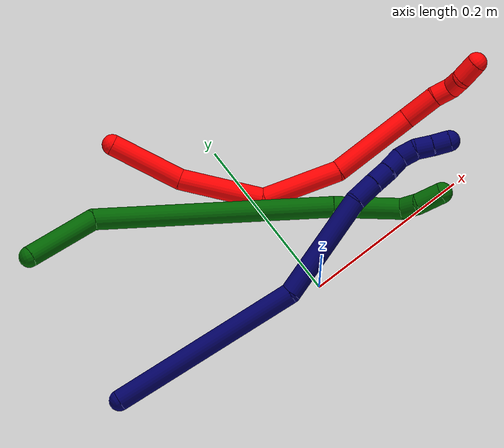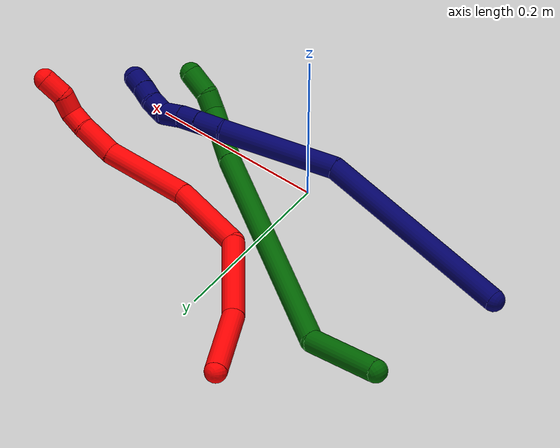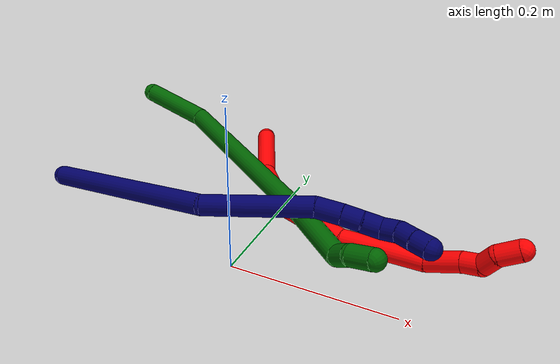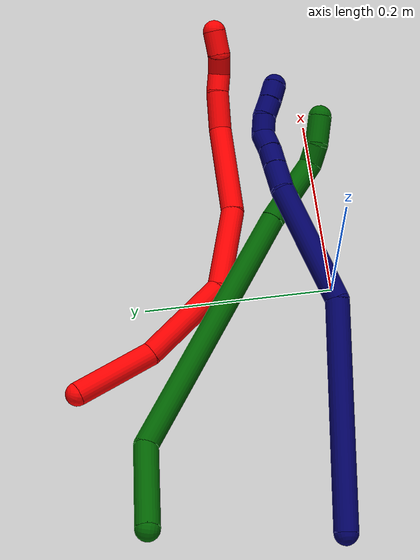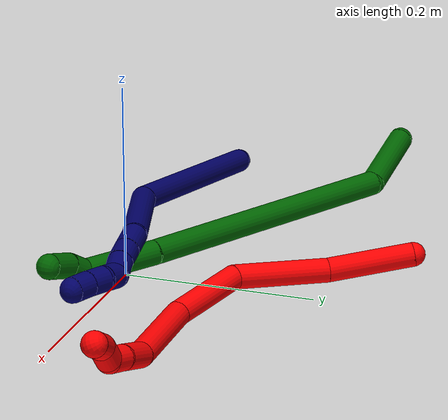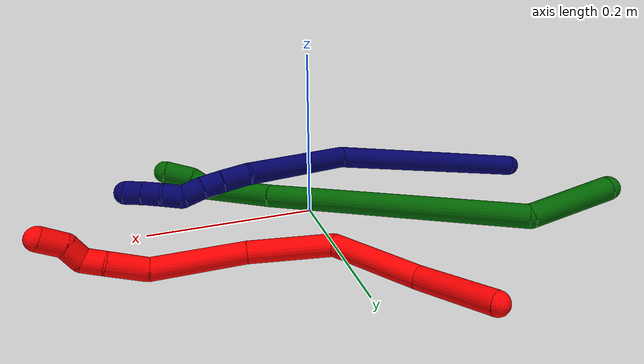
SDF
<sdf version="1.7">
 <world name="default">
  <model name="2">
   <static>0</static>
   <link name="2">
    <collision name="collision-cylinder-e_1_1_4">
     <pose>0.024966 -0.002267 0.036777 0.06156 0.595513 0.018897</pose>
     <geometry><cylinder><radius>0.0125</radius><length>0.089017</length></cylinder></geometry>
     <surface>
      <friction><ode><mu>1.16</mu><mu2>1.16</mu2><slip1>0</slip1><slip2>0</slip2></ode></friction>
      <contact><ode><kp>1e+06</kp><kd>1</kd><max_vel>0</max_vel><min_depth>0.001</min_depth></ode></contact>
     </surface>
    </collision>
    <visual name="visual-cylinder-e_1_1_4">
     <pose>0.024966 -0.002267 0.036777 0.06156 0.595513 0.018897</pose>
     <geometry><cylinder><radius>0.0125</radius><length>0.089017</length></cylinder></geometry>
     <material><ambient>1 0 0 1</ambient></material>
    </visual>
    <collision name="collision-cylinder-e_2_4_5">
     <pose>0.08892 -0.007148 0.105254 0.082288 0.886461 0.039082</pose>
     <geometry><cylinder><radius>0.0125</radius><length>0.100633</length></cylinder></geometry>
     <surface>
      <friction><ode><mu>1.16</mu><mu2>1.16</mu2><slip1>0</slip1><slip2>0</slip2></ode></friction>
      <contact><ode><kp>1e+06</kp><kd>1</kd><max_vel>0</max_vel><min_depth>0.001</min_depth></ode></contact>
     </surface>
    </collision>
    <visual name="visual-cylinder-e_2_4_5">
     <pose>0.08892 -0.007148 0.105254 0.082288 0.886461 0.039082</pose>
     <geometry><cylinder><radius>0.0125</radius><length>0.100633</length></cylinder></geometry>
     <material><ambient>1 0 0 1</ambient></material>
    </visual>
    <collision name="collision-cylinder-e_3_5_6">
     <pose>0.166221 -0.034904 0.148028 1.15593 0.948741 0.646361</pose>
     <geometry><cylinder><radius>0.0125</radius><length>0.09429</length></cylinder></geometry>
     <surface>
      <friction><ode><mu>1.16</mu><mu2>1.16</mu2><slip1>0</slip1><slip2>0</slip2></ode></friction>
      <contact><ode><kp>1e+06</kp><kd>1</kd><max_vel>0</max_vel><min_depth>0.001</min_depth></ode></contact>
     </surface>
    </collision>
    <visual name="visual-cylinder-e_3_5_6">
     <pose>0.166221 -0.034904 0.148028 1.15593 0.948741 0.646361</pose>
     <geometry><cylinder><radius>0.0125</radius><length>0.09429</length></cylinder></geometry>
     <material><ambient>1 0 0 1</ambient></material>
    </visual>
    <collision name="collision-cylinder-e_4_6_7">
     <pose>0.244796 -0.09122 0.156546 1.65256 0.910291 0.976531</pose>
     <geometry><cylinder><radius>0.0125</radius><length>0.101968</length></cylinder></geometry>
     <surface>
      <friction><ode><mu>1.16</mu><mu2>1.16</mu2><slip1>0</slip1><slip2>0</slip2></ode></friction>
      <contact><ode><kp>1e+06</kp><kd>1</kd><max_vel>0</max_vel><min_depth>0.001</min_depth></ode></contact>
     </surface>
    </collision>
    <visual name="visual-cylinder-e_4_6_7">
     <pose>0.244796 -0.09122 0.156546 1.65256 0.910291 0.976531</pose>
     <geometry><cylinder><radius>0.0125</radius><length>0.101968</length></cylinder></geometry>
     <material><ambient>1 0 0 1</ambient></material>
    </visual>
    <collision name="collision-cylinder-e_5_7_8">
     <pose>0.30509 -0.129351 0.150523 2.03339 1.20068 1.67179</pose>
     <geometry><cylinder><radius>0.0125</radius><length>0.042974</length></cylinder></geometry>
     <surface>
      <friction><ode><mu>1.16</mu><mu2>1.16</mu2><slip1>0</slip1><slip2>0</slip2></ode></friction>
      <contact><ode><kp>1e+06</kp><kd>1</kd><max_vel>0</max_vel><min_depth>0.001</min_depth></ode></contact>
     </surface>
    </collision>
    <visual name="visual-cylinder-e_5_7_8">
     <pose>0.30509 -0.129351 0.150523 2.03339 1.20068 1.67179</pose>
     <geometry><cylinder><radius>0.0125</radius><length>0.042974</length></cylinder></geometry>
     <material><ambient>1 0 0 1</ambient></material>
    </visual>
    <collision name="collision-cylinder-e_6_8_9">
     <pose>0.335586 -0.13997 0.147224 1.52445 1.23375 1.19034</pose>
     <geometry><cylinder><radius>0.0125</radius><length>0.022177</length></cylinder></geometry>
     <surface>
      <friction><ode><mu>1.16</mu><mu2>1.16</mu2><slip1>0</slip1><slip2>0</slip2></ode></friction>
      <contact><ode><kp>1e+06</kp><kd>1</kd><max_vel>0</max_vel><min_depth>0.001</min_depth></ode></contact>
     </surface>
    </collision>
    <visual name="visual-cylinder-e_6_8_9">
     <pose>0.335586 -0.13997 0.147224 1.52445 1.23375 1.19034</pose>
     <geometry><cylinder><radius>0.0125</radius><length>0.022177</length></cylinder></geometry>
     <material><ambient>1 0 0 1</ambient></material>
    </visual>
    <collision name="collision-cylinder-e_7_9_10">
     <pose>0.356079 -0.140766 0.14338 -2.52141 1.1137 -2.19094</pose>
     <geometry><cylinder><radius>0.0125</radius><length>0.022351</length></cylinder></geometry>
     <surface>
      <friction><ode><mu>1.16</mu><mu2>1.16</mu2><slip1>0</slip1><slip2>0</slip2></ode></friction>
      <contact><ode><kp>1e+06</kp><kd>1</kd><max_vel>0</max_vel><min_depth>0.001</min_depth></ode></contact>
     </surface>
    </collision>
    <visual name="visual-cylinder-e_7_9_10">
     <pose>0.356079 -0.140766 0.14338 -2.52141 1.1137 -2.19094</pose>
     <geometry><cylinder><radius>0.0125</radius><length>0.022351</length></cylinder></geometry>
     <material><ambient>1 0 0 1</ambient></material>
    </visual>
    <collision name="collision-cylinder-e_8_10_2">
     <pose>0.378188 -0.140845 0.134662 2.58224 1.14006 2.29913</pose>
     <geometry><cylinder><radius>0.0125</radius><length>0.02659</length></cylinder></geometry>
     <surface>
      <friction><ode><mu>1.16</mu><mu2>1.16</mu2><slip1>0</slip1><slip2>0</slip2></ode></friction>
      <contact><ode><kp>1e+06</kp><kd>1</kd><max_vel>0</max_vel><min_depth>0.001</min_depth></ode></contact>
     </surface>
    </collision>
    <visual name="visual-cylinder-e_8_10_2">
     <pose>0.378188 -0.140845 0.134662 2.58224 1.14006 2.29913</pose>
     <geometry><cylinder><radius>0.0125</radius><length>0.02659</length></cylinder></geometry>
     <material><ambient>1 0 0 1</ambient></material>
    </visual>
    <collision name="collision-sphere-2">
     <pose>0.390268 -0.143791 0.129957 0 -0 0</pose>
     <geometry><sphere><radius>0.0125</radius></sphere></geometry>
     <surface>
      <friction><ode><mu>1.16</mu><mu2>1.16</mu2><slip1>0</slip1><slip2>0</slip2></ode></friction>
      <contact><ode><kp>1e+06</kp><kd>1</kd><max_vel>0</max_vel><min_depth>0.001</min_depth></ode></contact>
     </surface>
    </collision>
    <visual name="visual-sphere-2">
     <pose>0.390268 -0.143791 0.129957 0 -0 0</pose>
     <geometry><sphere><radius>0.0125</radius></sphere></geometry>
     <material><ambient>1 0 0 1</ambient></material>
    </visual>
    <collision name="collision-sphere-10">
     <pose>0.366107 -0.1379 0.139367 0 -0 0</pose>
     <geometry><sphere><radius>0.0125</radius></sphere></geometry>
     <surface>
      <friction><ode><mu>1.16</mu><mu2>1.16</mu2><slip1>0</slip1><slip2>0</slip2></ode></friction>
      <contact><ode><kp>1e+06</kp><kd>1</kd><max_vel>0</max_vel><min_depth>0.001</min_depth></ode></contact>
     </surface>
    </collision>
    <visual name="visual-sphere-10">
     <pose>0.366107 -0.1379 0.139367 0 -0 0</pose>
     <geometry><sphere><radius>0.0125</radius></sphere></geometry>
     <material><ambient>1 0 0 1</ambient></material>
    </visual>
    <collision name="collision-sphere-9">
     <pose>0.346051 -0.143633 0.147394 0 -0 0</pose>
     <geometry><sphere><radius>0.0125</radius></sphere></geometry>
     <surface>
      <friction><ode><mu>1.16</mu><mu2>1.16</mu2><slip1>0</slip1><slip2>0</slip2></ode></friction>
      <contact><ode><kp>1e+06</kp><kd>1</kd><max_vel>0</max_vel><min_depth>0.001</min_depth></ode></contact>
     </surface>
    </collision>
    <visual name="visual-sphere-9">
     <pose>0.346051 -0.143633 0.147394 0 -0 0</pose>
     <geometry><sphere><radius>0.0125</radius></sphere></geometry>
     <material><ambient>1 0 0 1</ambient></material>
    </visual>
    <collision name="collision-sphere-4">
     <pose>0.049932 -0.004534 0.073554 0 -0 0</pose>
     <geometry><sphere><radius>0.0125</radius></sphere></geometry>
     <surface>
      <friction><ode><mu>1.16</mu><mu2>1.16</mu2><slip1>0</slip1><slip2>0</slip2></ode></friction>
      <contact><ode><kp>1e+06</kp><kd>1</kd><max_vel>0</max_vel><min_depth>0.001</min_depth></ode></contact>
     </surface>
    </collision>
    <visual name="visual-sphere-4">
     <pose>0.049932 -0.004534 0.073554 0 -0 0</pose>
     <geometry><sphere><radius>0.0125</radius></sphere></geometry>
     <material><ambient>1 0 0 1</ambient></material>
    </visual>
    <collision name="collision-sphere-1">
     <geometry><sphere><radius>0.0125</radius></sphere></geometry>
     <surface>
      <friction><ode><mu>1.16</mu><mu2>1.16</mu2><slip1>0</slip1><slip2>0</slip2></ode></friction>
      <contact><ode><kp>1e+06</kp><kd>1</kd><max_vel>0</max_vel><min_depth>0.001</min_depth></ode></contact>
     </surface>
    </collision>
    <visual name="visual-sphere-1">
     <geometry><sphere><radius>0.0125</radius></sphere></geometry>
     <material><ambient>1 0 0 1</ambient></material>
    </visual>
    <collision name="collision-sphere-8">
     <pose>0.325121 -0.136306 0.147054 0 -0 0</pose>
     <geometry><sphere><radius>0.0125</radius></sphere></geometry>
     <surface>
      <friction><ode><mu>1.16</mu><mu2>1.16</mu2><slip1>0</slip1><slip2>0</slip2></ode></friction>
      <contact><ode><kp>1e+06</kp><kd>1</kd><max_vel>0</max_vel><min_depth>0.001</min_depth></ode></contact>
     </surface>
    </collision>
    <visual name="visual-sphere-8">
     <pose>0.325121 -0.136306 0.147054 0 -0 0</pose>
     <geometry><sphere><radius>0.0125</radius></sphere></geometry>
     <material><ambient>1 0 0 1</ambient></material>
    </visual>
    <collision name="collision-sphere-5">
     <pose>0.127907 -0.009763 0.136955 0 -0 0</pose>
     <geometry><sphere><radius>0.0125</radius></sphere></geometry>
     <surface>
      <friction><ode><mu>1.16</mu><mu2>1.16</mu2><slip1>0</slip1><slip2>0</slip2></ode></friction>
      <contact><ode><kp>1e+06</kp><kd>1</kd><max_vel>0</max_vel><min_depth>0.001</min_depth></ode></contact>
     </surface>
    </collision>
    <visual name="visual-sphere-5">
     <pose>0.127907 -0.009763 0.136955 0 -0 0</pose>
     <geometry><sphere><radius>0.0125</radius></sphere></geometry>
     <material><ambient>1 0 0 1</ambient></material>
    </visual>
    <collision name="collision-sphere-6">
     <pose>0.204535 -0.060045 0.159101 0 -0 0</pose>
     <geometry><sphere><radius>0.0125</radius></sphere></geometry>
     <surface>
      <friction><ode><mu>1.16</mu><mu2>1.16</mu2><slip1>0</slip1><slip2>0</slip2></ode></friction>
      <contact><ode><kp>1e+06</kp><kd>1</kd><max_vel>0</max_vel><min_depth>0.001</min_depth></ode></contact>
     </surface>
    </collision>
    <visual name="visual-sphere-6">
     <pose>0.204535 -0.060045 0.159101 0 -0 0</pose>
     <geometry><sphere><radius>0.0125</radius></sphere></geometry>
     <material><ambient>1 0 0 1</ambient></material>
    </visual>
    <collision name="collision-sphere-7">
     <pose>0.285058 -0.122396 0.153992 0 -0 0</pose>
     <geometry><sphere><radius>0.0125</radius></sphere></geometry>
     <surface>
      <friction><ode><mu>1.16</mu><mu2>1.16</mu2><slip1>0</slip1><slip2>0</slip2></ode></friction>
      <contact><ode><kp>1e+06</kp><kd>1</kd><max_vel>0</max_vel><min_depth>0.001</min_depth></ode></contact>
     </surface>
    </collision>
    <visual name="visual-sphere-7">
     <pose>0.285058 -0.122396 0.153992 0 -0 0</pose>
     <geometry><sphere><radius>0.0125</radius></sphere></geometry>
     <material><ambient>1 0 0 1</ambient></material>
    </visual>
    <inertial>
     <pose>0.180746 -0.058136 0.12061 0 -0 0</pose>
     <mass>0.5</mass>
     <inertia>
      <ixx>0.000282</ixx>
      <ixy>0</ixy>
      <ixz>0</ixz>
      <iyy>0.000345</iyy>
      <iyz>0</iyz>
      <izz>-0.000133</izz>
     </inertia>
    </inertial>
   </link>
   <pose>-0.090837 0.277826 0.024093 2.16811 -0.5464 -0.389938</pose>
  </model>
  <model name="6">
   <static>0</static>
   <link name="6">
    <collision name="collision-cylinder-e_1_1_4">
     <pose>0.03996 -0.017454 0.008673 1.10962 1.117 0.738939</pose>
     <geometry><cylinder><radius>0.0125</radius><length>0.088919</length></cylinder></geometry>
     <surface>
      <friction><ode><mu>1.16</mu><mu2>1.16</mu2><slip1>0</slip1><slip2>0</slip2></ode></friction>
      <contact><ode><kp>1e+06</kp><kd>1</kd><max_vel>0</max_vel><min_depth>0.001</min_depth></ode></contact>
     </surface>
    </collision>
    <visual name="visual-cylinder-e_1_1_4">
     <pose>0.03996 -0.017454 0.008673 1.10962 1.117 0.738939</pose>
     <geometry><cylinder><radius>0.0125</radius><length>0.088919</length></cylinder></geometry>
     <material><ambient>0 0.392157 0.003922 1</ambient></material>
    </visual>
    <collision name="collision-cylinder-e_2_4_5">
     <pose>0.188932 -0.109329 -0.027114 2.10932 0.898967 1.40917</pose>
     <geometry><cylinder><radius>0.0125</radius><length>0.278559</length></cylinder></geometry>
     <surface>
      <friction><ode><mu>1.16</mu><mu2>1.16</mu2><slip1>0</slip1><slip2>0</slip2></ode></friction>
      <contact><ode><kp>1e+06</kp><kd>1</kd><max_vel>0</max_vel><min_depth>0.001</min_depth></ode></contact>
     </surface>
    </collision>
    <visual name="visual-cylinder-e_2_4_5">
     <pose>0.188932 -0.109329 -0.027114 2.10932 0.898967 1.40917</pose>
     <geometry><cylinder><radius>0.0125</radius><length>0.278559</length></cylinder></geometry>
     <material><ambient>0 0.392157 0.003922 1</ambient></material>
    </visual>
    <collision name="collision-cylinder-e_3_5_6">
     <pose>0.32824 -0.204091 -0.087269 2.22796 0.867436 1.5114</pose>
     <geometry><cylinder><radius>0.0125</radius><length>0.079448</length></cylinder></geometry>
     <surface>
      <friction><ode><mu>1.16</mu><mu2>1.16</mu2><slip1>0</slip1><slip2>0</slip2></ode></friction>
      <contact><ode><kp>1e+06</kp><kd>1</kd><max_vel>0</max_vel><min_depth>0.001</min_depth></ode></contact>
     </surface>
    </collision>
    <visual name="visual-cylinder-e_3_5_6">
     <pose>0.32824 -0.204091 -0.087269 2.22796 0.867436 1.5114</pose>
     <geometry><cylinder><radius>0.0125</radius><length>0.079448</length></cylinder></geometry>
     <material><ambient>0 0.392157 0.003922 1</ambient></material>
    </visual>
    <collision name="collision-cylinder-e_4_6_7">
     <pose>0.362378 -0.234862 -0.105049 1.76809 0.346581 0.420684</pose>
     <geometry><cylinder><radius>0.0125</radius><length>0.022616</length></cylinder></geometry>
     <surface>
      <friction><ode><mu>1.16</mu><mu2>1.16</mu2><slip1>0</slip1><slip2>0</slip2></ode></friction>
      <contact><ode><kp>1e+06</kp><kd>1</kd><max_vel>0</max_vel><min_depth>0.001</min_depth></ode></contact>
     </surface>
    </collision>
    <visual name="visual-cylinder-e_4_6_7">
     <pose>0.362378 -0.234862 -0.105049 1.76809 0.346581 0.420684</pose>
     <geometry><cylinder><radius>0.0125</radius><length>0.022616</length></cylinder></geometry>
     <material><ambient>0 0.392157 0.003922 1</ambient></material>
    </visual>
    <collision name="collision-cylinder-e_5_7_2">
     <pose>0.375227 -0.25757 -0.10706 1.56478 0.632923 0.629371</pose>
     <geometry><cylinder><radius>0.0125</radius><length>0.030458</length></cylinder></geometry>
     <surface>
      <friction><ode><mu>1.16</mu><mu2>1.16</mu2><slip1>0</slip1><slip2>0</slip2></ode></friction>
      <contact><ode><kp>1e+06</kp><kd>1</kd><max_vel>0</max_vel><min_depth>0.001</min_depth></ode></contact>
     </surface>
    </collision>
    <visual name="visual-cylinder-e_5_7_2">
     <pose>0.375227 -0.25757 -0.10706 1.56478 0.632923 0.629371</pose>
     <geometry><cylinder><radius>0.0125</radius><length>0.030458</length></cylinder></geometry>
     <material><ambient>0 0.392157 0.003922 1</ambient></material>
    </visual>
    <collision name="collision-sphere-2">
     <pose>0.384235 -0.269849 -0.106986 0 -0 0</pose>
     <geometry><sphere><radius>0.0125</radius></sphere></geometry>
     <surface>
      <friction><ode><mu>1.16</mu><mu2>1.16</mu2><slip1>0</slip1><slip2>0</slip2></ode></friction>
      <contact><ode><kp>1e+06</kp><kd>1</kd><max_vel>0</max_vel><min_depth>0.001</min_depth></ode></contact>
     </surface>
    </collision>
    <visual name="visual-sphere-2">
     <pose>0.384235 -0.269849 -0.106986 0 -0 0</pose>
     <geometry><sphere><radius>0.0125</radius></sphere></geometry>
     <material><ambient>0 0.392157 0.003922 1</ambient></material>
    </visual>
    <collision name="collision-sphere-7">
     <pose>0.366219 -0.245291 -0.107134 0 -0 0</pose>
     <geometry><sphere><radius>0.0125</radius></sphere></geometry>
     <surface>
      <friction><ode><mu>1.16</mu><mu2>1.16</mu2><slip1>0</slip1><slip2>0</slip2></ode></friction>
      <contact><ode><kp>1e+06</kp><kd>1</kd><max_vel>0</max_vel><min_depth>0.001</min_depth></ode></contact>
     </surface>
    </collision>
    <visual name="visual-sphere-7">
     <pose>0.366219 -0.245291 -0.107134 0 -0 0</pose>
     <geometry><sphere><radius>0.0125</radius></sphere></geometry>
     <material><ambient>0 0.392157 0.003922 1</ambient></material>
    </visual>
    <collision name="collision-sphere-6">
     <pose>0.358536 -0.224433 -0.102965 0 -0 0</pose>
     <geometry><sphere><radius>0.0125</radius></sphere></geometry>
     <surface>
      <friction><ode><mu>1.16</mu><mu2>1.16</mu2><slip1>0</slip1><slip2>0</slip2></ode></friction>
      <contact><ode><kp>1e+06</kp><kd>1</kd><max_vel>0</max_vel><min_depth>0.001</min_depth></ode></contact>
     </surface>
    </collision>
    <visual name="visual-sphere-6">
     <pose>0.358536 -0.224433 -0.102965 0 -0 0</pose>
     <geometry><sphere><radius>0.0125</radius></sphere></geometry>
     <material><ambient>0 0.392157 0.003922 1</ambient></material>
    </visual>
    <collision name="collision-sphere-5">
     <pose>0.297944 -0.183749 -0.071574 0 -0 0</pose>
     <geometry><sphere><radius>0.0125</radius></sphere></geometry>
     <surface>
      <friction><ode><mu>1.16</mu><mu2>1.16</mu2><slip1>0</slip1><slip2>0</slip2></ode></friction>
      <contact><ode><kp>1e+06</kp><kd>1</kd><max_vel>0</max_vel><min_depth>0.001</min_depth></ode></contact>
     </surface>
    </collision>
    <visual name="visual-sphere-5">
     <pose>0.297944 -0.183749 -0.071574 0 -0 0</pose>
     <geometry><sphere><radius>0.0125</radius></sphere></geometry>
     <material><ambient>0 0.392157 0.003922 1</ambient></material>
    </visual>
    <collision name="collision-sphere-1">
     <geometry><sphere><radius>0.0125</radius></sphere></geometry>
     <surface>
      <friction><ode><mu>1.16</mu><mu2>1.16</mu2><slip1>0</slip1><slip2>0</slip2></ode></friction>
      <contact><ode><kp>1e+06</kp><kd>1</kd><max_vel>0</max_vel><min_depth>0.001</min_depth></ode></contact>
     </surface>
    </collision>
    <visual name="visual-sphere-1">
     <geometry><sphere><radius>0.0125</radius></sphere></geometry>
     <material><ambient>0 0.392157 0.003922 1</ambient></material>
    </visual>
    <collision name="collision-sphere-4">
     <pose>0.07992 -0.034908 0.017346 0 -0 0</pose>
     <geometry><sphere><radius>0.0125</radius></sphere></geometry>
     <surface>
      <friction><ode><mu>1.16</mu><mu2>1.16</mu2><slip1>0</slip1><slip2>0</slip2></ode></friction>
      <contact><ode><kp>1e+06</kp><kd>1</kd><max_vel>0</max_vel><min_depth>0.001</min_depth></ode></contact>
     </surface>
    </collision>
    <visual name="visual-sphere-4">
     <pose>0.07992 -0.034908 0.017346 0 -0 0</pose>
     <geometry><sphere><radius>0.0125</radius></sphere></geometry>
     <material><ambient>0 0.392157 0.003922 1</ambient></material>
    </visual>
    <inertial>
     <pose>0.203768 -0.122755 -0.038703 0 -0 0</pose>
     <mass>0.5</mass>
     <inertia>
      <ixx>0.0014</ixx>
      <ixy>0</ixy>
      <ixz>0</ixz>
      <iyy>0.002275</iyy>
      <iyz>0</iyz>
      <izz>-0.000499</izz>
     </inertia>
    </inertial>
   </link>
   <pose>-0.252621 0.219815 0.088567 -1.59523 0.647611 -0.286537</pose>
  </model>
  <model name="7">
   <static>0</static>
   <link name="7">
    <collision name="collision-cylinder-e_1_1_4">
     <pose>0.026465 -0.015046 -0.112276 3.00838 0.229507 2.0923</pose>
     <geometry><cylinder><radius>0.0125</radius><length>0.23266</length></cylinder></geometry>
     <surface>
      <friction><ode><mu>1.16</mu><mu2>1.16</mu2><slip1>0</slip1><slip2>0</slip2></ode></friction>
      <contact><ode><kp>1e+06</kp><kd>1</kd><max_vel>0</max_vel><min_depth>0.001</min_depth></ode></contact>
     </surface>
    </collision>
    <visual name="visual-cylinder-e_1_1_4">
     <pose>0.026465 -0.015046 -0.112276 3.00838 0.229507 2.0923</pose>
     <geometry><cylinder><radius>0.0125</radius><length>0.23266</length></cylinder></geometry>
     <material><ambient>0.003922 0 0.403922 1</ambient></material>
    </visual>
    <collision name="collision-cylinder-e_2_4_5">
     <pose>0.06995 -0.011977 -0.28502 -2.85053 0.263369 -1.46969</pose>
     <geometry><cylinder><radius>0.0125</radius><length>0.130756</length></cylinder></geometry>
     <surface>
      <friction><ode><mu>1.16</mu><mu2>1.16</mu2><slip1>0</slip1><slip2>0</slip2></ode></friction>
      <contact><ode><kp>1e+06</kp><kd>1</kd><max_vel>0</max_vel><min_depth>0.001</min_depth></ode></contact>
     </surface>
    </collision>
    <visual name="visual-cylinder-e_2_4_5">
     <pose>0.06995 -0.011977 -0.28502 -2.85053 0.263369 -1.46969</pose>
     <geometry><cylinder><radius>0.0125</radius><length>0.130756</length></cylinder></geometry>
     <material><ambient>0.003922 0 0.403922 1</ambient></material>
    </visual>
    <collision name="collision-cylinder-e_3_5_6">
     <pose>0.087595 0.00837 -0.360444 -2.99339 0.041291 -0.542566</pose>
     <geometry><cylinder><radius>0.0125</radius><length>0.030267</length></cylinder></geometry>
     <surface>
      <friction><ode><mu>1.16</mu><mu2>1.16</mu2><slip1>0</slip1><slip2>0</slip2></ode></friction>
      <contact><ode><kp>1e+06</kp><kd>1</kd><max_vel>0</max_vel><min_depth>0.001</min_depth></ode></contact>
     </surface>
    </collision>
    <visual name="visual-cylinder-e_3_5_6">
     <pose>0.087595 0.00837 -0.360444 -2.99339 0.041291 -0.542566</pose>
     <geometry><cylinder><radius>0.0125</radius><length>0.030267</length></cylinder></geometry>
     <material><ambient>0.003922 0 0.403922 1</ambient></material>
    </visual>
    <collision name="collision-cylinder-e_4_6_7">
     <pose>0.088038 0.012149 -0.386531 -3.00361 -0.0161 0.231945</pose>
     <geometry><cylinder><radius>0.0125</radius><length>0.022481</length></cylinder></geometry>
     <surface>
      <friction><ode><mu>1.16</mu><mu2>1.16</mu2><slip1>0</slip1><slip2>0</slip2></ode></friction>
      <contact><ode><kp>1e+06</kp><kd>1</kd><max_vel>0</max_vel><min_depth>0.001</min_depth></ode></contact>
     </surface>
    </collision>
    <visual name="visual-cylinder-e_4_6_7">
     <pose>0.088038 0.012149 -0.386531 -3.00361 -0.0161 0.231945</pose>
     <geometry><cylinder><radius>0.0125</radius><length>0.022481</length></cylinder></geometry>
     <material><ambient>0.003922 0 0.403922 1</ambient></material>
    </visual>
    <collision name="collision-cylinder-e_5_7_8">
     <pose>0.087165 0.016525 -0.408761 -2.89192 -0.060361 0.472186</pose>
     <geometry><cylinder><radius>0.0125</radius><length>0.022948</length></cylinder></geometry>
     <surface>
      <friction><ode><mu>1.16</mu><mu2>1.16</mu2><slip1>0</slip1><slip2>0</slip2></ode></friction>
      <contact><ode><kp>1e+06</kp><kd>1</kd><max_vel>0</max_vel><min_depth>0.001</min_depth></ode></contact>
     </surface>
    </collision>
    <visual name="visual-cylinder-e_5_7_8">
     <pose>0.087165 0.016525 -0.408761 -2.89192 -0.060361 0.472186</pose>
     <geometry><cylinder><radius>0.0125</radius><length>0.022948</length></cylinder></geometry>
     <material><ambient>0.003922 0 0.403922 1</ambient></material>
    </visual>
    <collision name="collision-cylinder-e_6_8_9">
     <pose>0.089105 0.017139 -0.429616 2.91835 0.257265 1.71354</pose>
     <geometry><cylinder><radius>0.0125</radius><length>0.020693</length></cylinder></geometry>
     <surface>
      <friction><ode><mu>1.16</mu><mu2>1.16</mu2><slip1>0</slip1><slip2>0</slip2></ode></friction>
      <contact><ode><kp>1e+06</kp><kd>1</kd><max_vel>0</max_vel><min_depth>0.001</min_depth></ode></contact>
     </surface>
    </collision>
    <visual name="visual-cylinder-e_6_8_9">
     <pose>0.089105 0.017139 -0.429616 2.91835 0.257265 1.71354</pose>
     <geometry><cylinder><radius>0.0125</radius><length>0.020693</length></cylinder></geometry>
     <material><ambient>0.003922 0 0.403922 1</ambient></material>
    </visual>
    <collision name="collision-cylinder-e_7_9_10">
     <pose>0.092157 0.010701 -0.448506 2.70844 0.041585 0.188464</pose>
     <geometry><cylinder><radius>0.0125</radius><length>0.020139</length></cylinder></geometry>
     <surface>
      <friction><ode><mu>1.16</mu><mu2>1.16</mu2><slip1>0</slip1><slip2>0</slip2></ode></friction>
      <contact><ode><kp>1e+06</kp><kd>1</kd><max_vel>0</max_vel><min_depth>0.001</min_depth></ode></contact>
     </surface>
    </collision>
    <visual name="visual-cylinder-e_7_9_10">
     <pose>0.092157 0.010701 -0.448506 2.70844 0.041585 0.188464</pose>
     <geometry><cylinder><radius>0.0125</radius><length>0.020139</length></cylinder></geometry>
     <material><ambient>0.003922 0 0.403922 1</ambient></material>
    </visual>
    <collision name="collision-cylinder-e_8_10_2">
     <pose>0.092869 0.002898 -0.467 2.7763 0.029306 0.158344</pose>
     <geometry><cylinder><radius>0.0125</radius><length>0.020057</length></cylinder></geometry>
     <surface>
      <friction><ode><mu>1.16</mu><mu2>1.16</mu2><slip1>0</slip1><slip2>0</slip2></ode></friction>
      <contact><ode><kp>1e+06</kp><kd>1</kd><max_vel>0</max_vel><min_depth>0.001</min_depth></ode></contact>
     </surface>
    </collision>
    <visual name="visual-cylinder-e_8_10_2">
     <pose>0.092869 0.002898 -0.467 2.7763 0.029306 0.158344</pose>
     <geometry><cylinder><radius>0.0125</radius><length>0.020057</length></cylinder></geometry>
     <material><ambient>0.003922 0 0.403922 1</ambient></material>
    </visual>
    <collision name="collision-sphere-2">
     <pose>0.093163 -0.000683 -0.476363 0 -0 0</pose>
     <geometry><sphere><radius>0.0125</radius></sphere></geometry>
     <surface>
      <friction><ode><mu>1.16</mu><mu2>1.16</mu2><slip1>0</slip1><slip2>0</slip2></ode></friction>
      <contact><ode><kp>1e+06</kp><kd>1</kd><max_vel>0</max_vel><min_depth>0.001</min_depth></ode></contact>
     </surface>
    </collision>
    <visual name="visual-sphere-2">
     <pose>0.093163 -0.000683 -0.476363 0 -0 0</pose>
     <geometry><sphere><radius>0.0125</radius></sphere></geometry>
     <material><ambient>0.003922 0 0.403922 1</ambient></material>
    </visual>
    <collision name="collision-sphere-10">
     <pose>0.092575 0.006478 -0.457637 0 -0 0</pose>
     <geometry><sphere><radius>0.0125</radius></sphere></geometry>
     <surface>
      <friction><ode><mu>1.16</mu><mu2>1.16</mu2><slip1>0</slip1><slip2>0</slip2></ode></friction>
      <contact><ode><kp>1e+06</kp><kd>1</kd><max_vel>0</max_vel><min_depth>0.001</min_depth></ode></contact>
     </surface>
    </collision>
    <visual name="visual-sphere-10">
     <pose>0.092575 0.006478 -0.457637 0 -0 0</pose>
     <geometry><sphere><radius>0.0125</radius></sphere></geometry>
     <material><ambient>0.003922 0 0.403922 1</ambient></material>
    </visual>
    <collision name="collision-sphere-9">
     <pose>0.091738 0.014924 -0.439374 0 -0 0</pose>
     <geometry><sphere><radius>0.0125</radius></sphere></geometry>
     <surface>
      <friction><ode><mu>1.16</mu><mu2>1.16</mu2><slip1>0</slip1><slip2>0</slip2></ode></friction>
      <contact><ode><kp>1e+06</kp><kd>1</kd><max_vel>0</max_vel><min_depth>0.001</min_depth></ode></contact>
     </surface>
    </collision>
    <visual name="visual-sphere-9">
     <pose>0.091738 0.014924 -0.439374 0 -0 0</pose>
     <geometry><sphere><radius>0.0125</radius></sphere></geometry>
     <material><ambient>0.003922 0 0.403922 1</ambient></material>
    </visual>
    <collision name="collision-sphere-4">
     <pose>0.05293 -0.030092 -0.224552 0 -0 0</pose>
     <geometry><sphere><radius>0.0125</radius></sphere></geometry>
     <surface>
      <friction><ode><mu>1.16</mu><mu2>1.16</mu2><slip1>0</slip1><slip2>0</slip2></ode></friction>
      <contact><ode><kp>1e+06</kp><kd>1</kd><max_vel>0</max_vel><min_depth>0.001</min_depth></ode></contact>
     </surface>
    </collision>
    <visual name="visual-sphere-4">
     <pose>0.05293 -0.030092 -0.224552 0 -0 0</pose>
     <geometry><sphere><radius>0.0125</radius></sphere></geometry>
     <material><ambient>0.003922 0 0.403922 1</ambient></material>
    </visual>
    <collision name="collision-sphere-1">
     <geometry><sphere><radius>0.0125</radius></sphere></geometry>
     <surface>
      <friction><ode><mu>1.16</mu><mu2>1.16</mu2><slip1>0</slip1><slip2>0</slip2></ode></friction>
      <contact><ode><kp>1e+06</kp><kd>1</kd><max_vel>0</max_vel><min_depth>0.001</min_depth></ode></contact>
     </surface>
    </collision>
    <visual name="visual-sphere-1">
     <geometry><sphere><radius>0.0125</radius></sphere></geometry>
     <material><ambient>0.003922 0 0.403922 1</ambient></material>
    </visual>
    <collision name="collision-sphere-8">
     <pose>0.086473 0.019354 -0.419859 0 -0 0</pose>
     <geometry><sphere><radius>0.0125</radius></sphere></geometry>
     <surface>
      <friction><ode><mu>1.16</mu><mu2>1.16</mu2><slip1>0</slip1><slip2>0</slip2></ode></friction>
      <contact><ode><kp>1e+06</kp><kd>1</kd><max_vel>0</max_vel><min_depth>0.001</min_depth></ode></contact>
     </surface>
    </collision>
    <visual name="visual-sphere-8">
     <pose>0.086473 0.019354 -0.419859 0 -0 0</pose>
     <geometry><sphere><radius>0.0125</radius></sphere></geometry>
     <material><ambient>0.003922 0 0.403922 1</ambient></material>
    </visual>
    <collision name="collision-sphere-5">
     <pose>0.08697 0.006137 -0.345489 0 -0 0</pose>
     <geometry><sphere><radius>0.0125</radius></sphere></geometry>
     <surface>
      <friction><ode><mu>1.16</mu><mu2>1.16</mu2><slip1>0</slip1><slip2>0</slip2></ode></friction>
      <contact><ode><kp>1e+06</kp><kd>1</kd><max_vel>0</max_vel><min_depth>0.001</min_depth></ode></contact>
     </surface>
    </collision>
    <visual name="visual-sphere-5">
     <pose>0.08697 0.006137 -0.345489 0 -0 0</pose>
     <geometry><sphere><radius>0.0125</radius></sphere></geometry>
     <material><ambient>0.003922 0 0.403922 1</ambient></material>
    </visual>
    <collision name="collision-sphere-6">
     <pose>0.088219 0.010603 -0.375399 0 -0 0</pose>
     <geometry><sphere><radius>0.0125</radius></sphere></geometry>
     <surface>
      <friction><ode><mu>1.16</mu><mu2>1.16</mu2><slip1>0</slip1><slip2>0</slip2></ode></friction>
      <contact><ode><kp>1e+06</kp><kd>1</kd><max_vel>0</max_vel><min_depth>0.001</min_depth></ode></contact>
     </surface>
    </collision>
    <visual name="visual-sphere-6">
     <pose>0.088219 0.010603 -0.375399 0 -0 0</pose>
     <geometry><sphere><radius>0.0125</radius></sphere></geometry>
     <material><ambient>0.003922 0 0.403922 1</ambient></material>
    </visual>
    <collision name="collision-sphere-7">
     <pose>0.087857 0.013695 -0.397663 0 -0 0</pose>
     <geometry><sphere><radius>0.0125</radius></sphere></geometry>
     <surface>
      <friction><ode><mu>1.16</mu><mu2>1.16</mu2><slip1>0</slip1><slip2>0</slip2></ode></friction>
      <contact><ode><kp>1e+06</kp><kd>1</kd><max_vel>0</max_vel><min_depth>0.001</min_depth></ode></contact>
     </surface>
    </collision>
    <visual name="visual-sphere-7">
     <pose>0.087857 0.013695 -0.397663 0 -0 0</pose>
     <geometry><sphere><radius>0.0125</radius></sphere></geometry>
     <material><ambient>0.003922 0 0.403922 1</ambient></material>
    </visual>
    <inertial>
     <pose>0.054993 -0.007065 -0.239317 0 -0 0</pose>
     <mass>0.5</mass>
     <inertia>
      <ixx>0.000233</ixx>
      <ixy>0</ixy>
      <ixz>0</ixz>
      <iyy>0.001249</iyy>
      <iyz>0</iyz>
      <izz>-0.000244</izz>
     </inertia>
    </inertial>
   </link>
   <pose>-0.268532 0.030961 0.037522 -1.11883 -1.30872 1.09342</pose>
  </model>
 </world>
</sdf>
